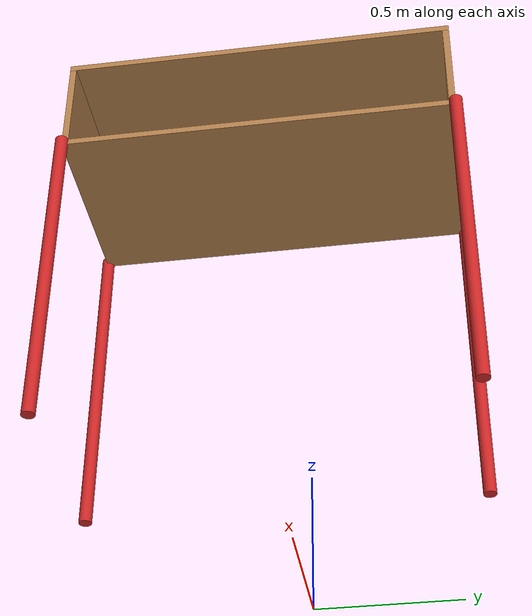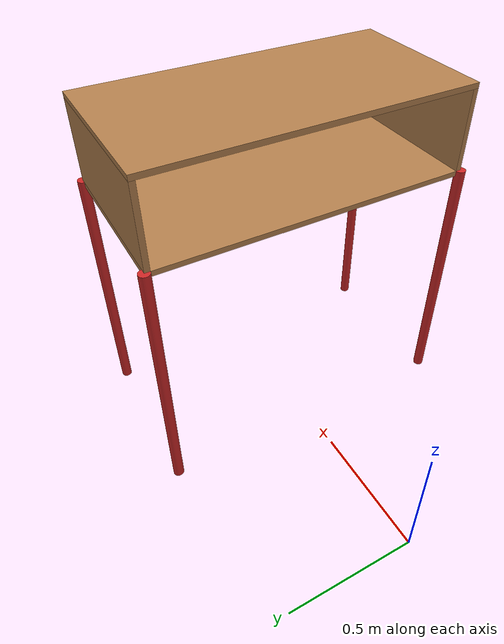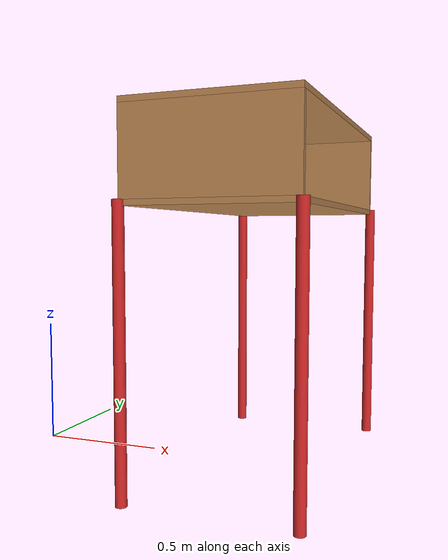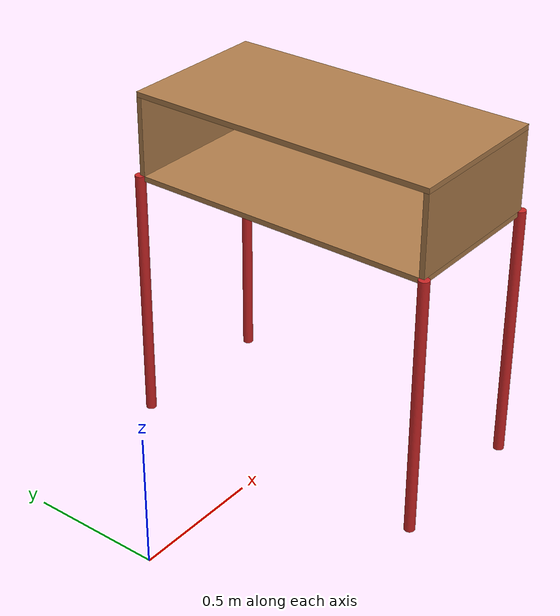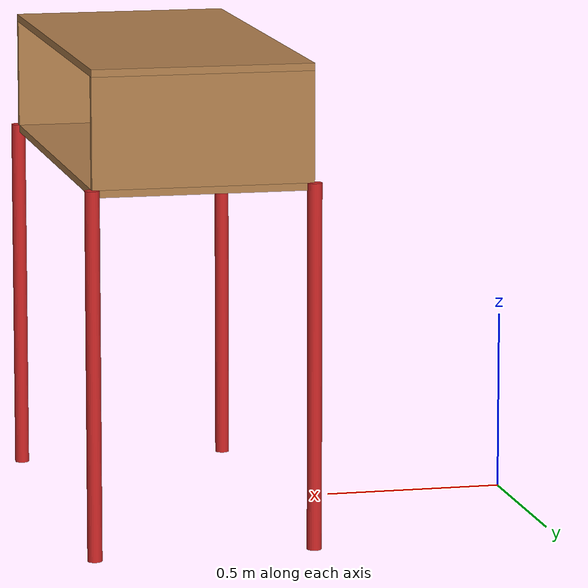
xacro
<?xml version="1.0"?>
<robot name="table"
       xmlns:xi="http://www.w3.org/2001/XInclude"
       xmlns:gazebo="http://playerstage.sourceforge.net/gazebo/xmlschema/#gz"
       xmlns:model="http://playerstage.sourceforge.net/gazebo/xmlschema/#model"
       xmlns:sensor="http://playerstage.sourceforge.net/gazebo/xmlschema/#sensor"
       xmlns:body="http://playerstage.sourceforge.net/gazebo/xmlschema/#body"
       xmlns:geom="http://playerstage.sourceforge.net/gazebo/xmlschema/#geom"
       xmlns:joint="http://playerstage.sourceforge.net/gazebo/xmlschema/#joint"
       xmlns:interface="http://playerstage.sourceforge.net/gazebo/xmlschema/#interface"
       xmlns:rendering="http://playerstage.sourceforge.net/gazebo/xmlschema/#rendering"
       xmlns:renderable="http://playerstage.sourceforge.net/gazebo/xmlschema/#renderable"
       xmlns:controller="http://playerstage.sourceforge.net/gazebo/xmlschema/#controller"
       xmlns:physics="http://playerstage.sourceforge.net/gazebo/xmlschema/#physics">

  <property name="table_height" value="1.0" />
  <property name="table_width" value="0.6" />
  <property name="table_depth" value="1.2" />
  <property name="leg_radius" value="0.02" />
  <property name="table_x" value="0.98" />
  <property name="table_y" value="0.0" />
  <property name="table_z" value="0.0" />

  <property name="table_top_thickness" value="0.02"/>
  <property name="shelf_height" value="0.3"/>

  <property name="M_PI" value="3.1415926535897931" />

  <!-- tabletop height is .6+.01+.025=.585 -->
  <link name="table_top_link">
    <inertial>
      <mass value="1.0" />
      <origin xyz="${table_x} ${table_y} ${table_z+table_height-table_top_thickness/2}" />
      <inertia ixx="1" ixy="0"  ixz="0"
               iyy="1" iyz="0"
               izz="1" />
    </inertial>
    <visual>
      <origin xyz="${table_x} ${table_y} ${table_z+table_height-table_top_thickness/2}" />
      <geometry>
        <box size="${table_width} ${table_depth} ${table_top_thickness}" />
      </geometry>
    </visual>
    <collision>
      <origin xyz="${table_x} ${table_y} ${table_z+table_height-table_top_thickness/2}" />
      <geometry>
        <box size="${table_width} ${table_depth} ${table_top_thickness}" />
      </geometry>
    </collision>
  </link>
  <gazebo reference="table_top_link">
    <material>Gazebo/Wood</material>
    <mu1>50.0</mu1>
    <mu2>50.0</mu2>
    <kp>1000000.0</kp>
    <kd>1.0</kd>
  </gazebo>

  <joint name="shelf_left_joint" type="fixed" >
    <parent link="table_top_link" />
    <origin xyz="${table_x} ${table_y+table_depth/2-table_top_thickness/2} ${table_z+table_height}" rpy="0 0 0" />
    <child link="shelf_left_link" />
  </joint>
  <link name="shelf_left_link">
    <inertial>
      <mass value="1.0" />
      <origin xyz="0.0 0.0 ${shelf_height/2}" />
      <inertia ixx="1" ixy="0"  ixz="0"
               iyy="1" iyz="0"
               izz="1" />
    </inertial>
    <visual>
      <origin xyz="0.0 0.0 ${shelf_height/2}" />
      <geometry>
        <box size="${table_width} ${table_top_thickness} ${shelf_height}" />
      </geometry>
    </visual>
    <collision>
      <origin xyz="0.0 0.0 ${shelf_height/2}" />
      <geometry>
        <box size="${table_width} ${table_top_thickness} ${shelf_height}" />
      </geometry>
    </collision>
  </link>
  <gazebo reference="shelf_left_link">
    <material>Gazebo/Wood</material>
    <mu1>50.0</mu1>
    <mu2>50.0</mu2>
    <kp>1000000.0</kp>
    <kd>1.0</kd>
    <selfCollide>true</selfCollide>
  </gazebo>

  <joint name="shelf_right_joint" type="fixed" >
    <parent link="table_top_link" />
    <origin xyz="${table_x} ${table_y-table_depth/2+table_top_thickness/2} ${table_z+table_height}" rpy="0 0 0" />
    <child link="shelf_right_link" />
  </joint>
  <link name="shelf_right_link">
    <inertial>
      <mass value="1.0" />
      <origin xyz="0.0 0.0 ${shelf_height/2}" />
      <inertia ixx="1" ixy="0"  ixz="0"
               iyy="1" iyz="0"
               izz="1" />
    </inertial>
    <visual>
      <origin xyz="0.0 0.0 ${shelf_height/2}" />
      <geometry>
        <box size="${table_width} ${table_top_thickness} ${shelf_height}" />
      </geometry>
    </visual>
    <collision>
      <origin xyz="0.0 0.0 ${shelf_height/2}" />
      <geometry>
        <box size="${table_width} ${table_top_thickness} ${shelf_height}" />
      </geometry>
    </collision>
  </link>
  <gazebo reference="shelf_right_link">
    <material>Gazebo/Wood</material>
    <mu1>50.0</mu1>
    <mu2>50.0</mu2>
    <kp>1000000.0</kp>
    <kd>1.0</kd>
    <selfCollide>true</selfCollide>
  </gazebo>

  <joint name="shelf_top_joint" type="fixed" >
    <parent link="table_top_link" />
    <origin xyz="${table_x} ${table_y} ${table_z+table_height+shelf_height+table_top_thickness/2}" rpy="0 0 0" />
    <child link="shelf_top_link" />
  </joint>
  <link name="shelf_top_link">
    <inertial>
      <mass value="1.0" />
      <origin xyz="0.0 0.0 0.0" />
      <inertia ixx="1" ixy="0"  ixz="0"
               iyy="1" iyz="0"
               izz="1" />
    </inertial>
    <visual>
      <origin xyz="0.0 0.0 0.0" />
      <geometry>
        <box size="${table_width} ${table_depth} ${table_top_thickness}" />
      </geometry>
    </visual>
    <collision>
      <origin xyz="0.0 0.0 0.0" />
      <geometry>
        <box size="${table_width} ${table_depth} ${table_top_thickness}" />
      </geometry>
    </collision>
  </link>
  <gazebo reference="shelf_top_link">
    <material>Gazebo/Wood</material>
    <mu1>50.0</mu1>
    <mu2>50.0</mu2>
    <kp>1000000.0</kp>
    <kd>1.0</kd>
    <selfCollide>true</selfCollide>
  </gazebo>

  <joint name="leg1_joint" type="fixed" >
    <parent link="table_top_link" />
    <origin xyz="${table_x+table_width/2} ${table_y+table_depth/2} ${table_z+table_height}" rpy="0 0 0" />
    <child link="leg1_link" />
  </joint>
  <link name="leg1_link">
    <inertial>
      <mass value="1.0" />
      <origin xyz="0 0 ${-table_height/2}" />
      <inertia ixx="0.1" ixy="0"  ixz="0"
               iyy="0.1" iyz="0"
               izz="0.01" />
    </inertial>
    <visual>
      <origin xyz="0.0 0.0 ${-table_height/2}" rpy="0 0 0" />
      <geometry>
        <cylinder radius="${leg_radius}" length="${table_height}" />
      </geometry>
    </visual>
    <collision>
      <origin xyz="0.0 0.0 ${-table_height/2}" rpy="0.0 0.0 0.0" />
      <geometry>
        <cylinder radius="${leg_radius}" length="${table_height}" />
      </geometry>
    </collision>
  </link>
  <gazebo reference="leg1_link">
    <material>Gazebo/Red</material>
    <mu1>1000.0</mu1>
    <mu2>1000.0</mu2>
    <kp>10000000.0</kp>
    <kd>1.0</kd>
    <selfCollide>true</selfCollide>
  </gazebo>

  <joint name="leg2_joint" type="fixed" >
    <parent link="table_top_link" />
    <origin xyz="${table_x-table_width/2} ${table_y+table_depth/2} ${table_z+table_height}" rpy="0 0 0" />
    <child link="leg2_link" />
  </joint>
  <link name="leg2_link">
    <inertial>
      <mass value="1.0" />
      <origin xyz="0 0 ${-table_height/2}" />
      <inertia ixx="0.1" ixy="0"  ixz="0"
               iyy="0.1" iyz="0"
               izz="0.01" />
    </inertial>
    <visual>
      <origin xyz="0.0 0.0 ${-table_height/2}" rpy="0 0 0" />
      <geometry>
        <cylinder radius="${leg_radius}" length="${table_height}" />
      </geometry>
    </visual>
    <collision>
      <origin xyz="0.0 0.0 ${-table_height/2}" rpy="0.0 0.0 0.0" />
      <geometry>
        <cylinder radius="${leg_radius}" length="${table_height}" />
      </geometry>
    </collision>
  </link>
  <gazebo reference="leg2_link">
    <material>Gazebo/Red</material>
    <mu1>1000.0</mu1>
    <mu2>1000.0</mu2>
    <kp>10000000.0</kp>
    <kd>1.0</kd>
    <selfCollide>true</selfCollide>
  </gazebo>

  <joint name="leg3_joint" type="fixed" >
    <parent link="table_top_link" />
    <origin xyz="${table_x+table_width/2} ${table_y-table_depth/2} ${table_z+table_height}" rpy="0 0 0" />
    <child link="leg3_link" />
  </joint>
  <link name="leg3_link">
    <inertial>
      <mass value="1.0" />
      <origin xyz="0 0 ${-table_height/2}" />
      <inertia ixx="0.1" ixy="0"  ixz="0"
               iyy="0.1" iyz="0"
               izz="0.01" />
    </inertial>
    <visual>
      <origin xyz="0.0 0.0 ${-table_height/2}" rpy="0 0 0" />
      <geometry>
        <cylinder radius="${leg_radius}" length="${table_height}" />
      </geometry>
    </visual>
    <collision>
      <origin xyz="0.0 0.0 ${-table_height/2}" rpy="0.0 0.0 0.0" />
      <geometry>
        <cylinder radius="${leg_radius}" length="${table_height}" />
      </geometry>
    </collision>
  </link>
  <gazebo reference="leg3_link">
    <material>Gazebo/Red</material>
    <mu1>1000.0</mu1>
    <mu2>1000.0</mu2>
    <kp>10000000.0</kp>
    <kd>1.0</kd>
    <selfCollide>true</selfCollide>
  </gazebo>

  <joint name="leg4_joint" type="fixed" >
    <parent link="table_top_link" />
    <origin xyz="${table_x-table_width/2} ${table_y-table_depth/2} ${table_z+table_height}" rpy="0 0 0" />
    <child link="leg4_link" />
  </joint>
  <link name="leg4_link">
    <inertial>
      <mass value="1.0" />
      <origin xyz="0 0 ${-table_height/2}" />
      <inertia ixx="0.1" ixy="0"  ixz="0"
               iyy="0.1" iyz="0"
               izz="0.01" />
    </inertial>
    <visual>
      <origin xyz="0.0 0.0 ${-table_height/2}" rpy="0 0 0" />
      <geometry>
        <cylinder radius="${leg_radius}" length="${table_height}" />
      </geometry>
    </visual>
    <collision>
      <origin xyz="0.0 0.0 ${-table_height/2}" rpy="0.0 0.0 0.0" />
      <geometry>
        <cylinder radius="${leg_radius}" length="${table_height}" />
      </geometry>
    </collision>
  </link>
  <gazebo reference="leg4_link">
    <material>Gazebo/Red</material>
    <mu1>1000.0</mu1>
    <mu2>1000.0</mu2>
    <kp>10000000.0</kp>
    <kd>1.0</kd>
    <selfCollide>true</selfCollide>
  </gazebo>
  <gazebo>
    <static>true</static>
    <canonicalBody>table_top_link</canonicalBody>
  </gazebo>

</robot>
